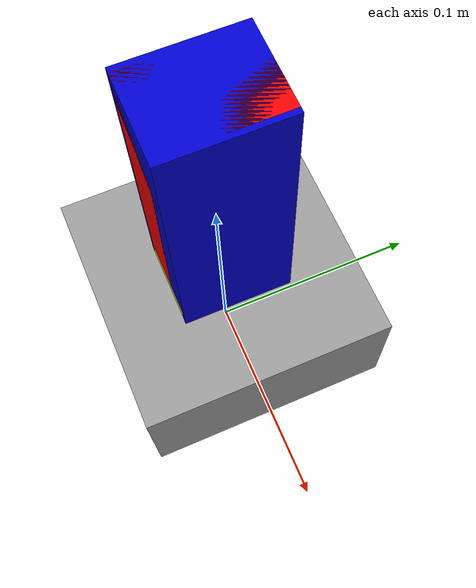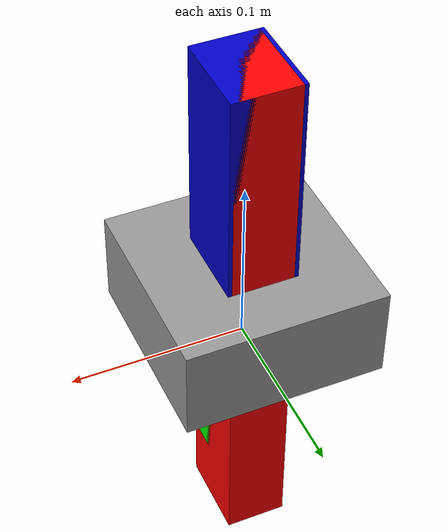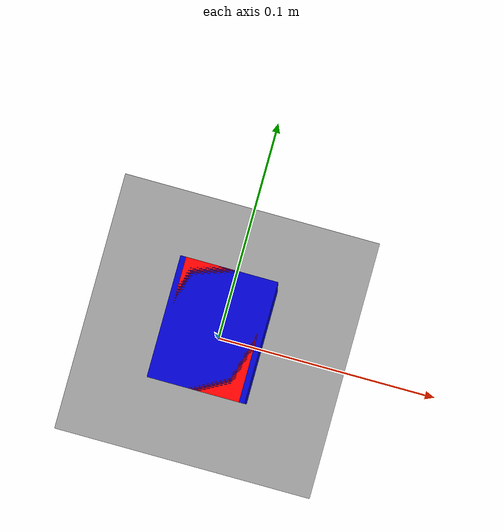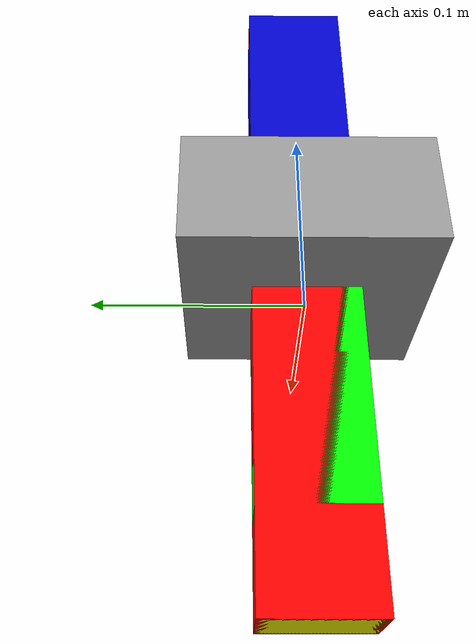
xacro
<?xml version="1.0"?>
<robot name="omnipointer"  xmlns:xacro="http://ros.org/wiki/xacro">
  <xacro:include filename="$(find omni_description)/urdf/common.xacro" />
  <!-- omnipointer arm -->
  <xacro:include filename="$(find omni_description)/urdf/omnipointer_arm/arm.urdf.xacro" />
  <!-- materials for visualization -->
  <xacro:include filename="$(find omni_description)/urdf/materials.urdf.xacro" />

    <!-- Now we can start using the macros xacro:included above to define the actual omnipointer -->

  <!-- foot for arm-->
  <link name="base_link">
    <inertial>
       <origin xyz="0 0 0" rpy="0 0 0"/>
       <mass value="10.0"/>
       <inertia ixx="0.1"  ixy="0"  ixz="0" iyy="0.1" iyz="0" izz="0.1" />
    </inertial>
  </link>

  <xacro:omnipointer_arm name="arm" parent="base_link">
    <origin xyz="0 0 0" rpy="0 0 0" />
  </xacro:omnipointer_arm>
</robot>

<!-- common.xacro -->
<robot xmlns:xacro="http://ros.org/wiki/xacro">
    <xacro:property name="M_PI" value="3.1415926535897931" />

    <xacro:macro name="box_link" params="name width depth length mass color">
        <link name="${name}">
            <visual>
                <origin xyz="0 0 ${length/2.0}" rpy="0 0 0"/>
                <geometry>
                  <box size="${width} ${depth} ${length}"/>
                </geometry>
                <material name="${color}"/>
            </visual>
            <collision>
                <origin xyz="0 0 ${length/2.0}" rpy="0 0 0"/>
                <geometry>
                    <box size="${width} ${depth} ${length}"/>
                </geometry>
            </collision>
            <inertial>
                <!-- CENTER OF MASS -->
                <origin xyz="0 0 ${length/2.0}" rpy="0 0 0"/>
                <mass value="${mass}"/>
                <!-- box inertia: 1/12*m(y^2+z^2), ... -->
                <inertia ixx="${1/12*mass*(depth*depth+length*length)}" ixy="0" ixz="0" iyy="${1/12*mass*(width*width+length*length)}" iyz="0" izz="${1/12*mass*(width*width+depth*depth)}"/>
              </inertial>
          </link>
    </xacro:macro>

    <xacro:macro name="box_vci" params="name mass size_x size_y size_z xyz color">
        <!-- For Box Visual Collision Intertial -->
        <visual>
            <origin xyz="${xyz}" rpy="0 0 0"/>
            <geometry name="${name}">
              <box size="${size_x} ${size_y} ${size_z}"/>
            </geometry>
            <material name="${color}"/>
        </visual>
        <collision>
            <origin xyz="${xyz}" rpy="0 0 0"/>
            <geometry>
                <box size="${size_x} ${size_y} ${size_z}"/>
            </geometry>
        </collision>
        <inertial>
            <!-- center of mass -->
            <origin xyz="${xyz}" rpy="0 0 0"/>
            <mass value="${mass}"/>
            <!-- box inertia: 1/12*m(y^2+z^2), ... -->
            <inertia ixx="${1/12*mass*(size_y**2 + size_z**2)}" ixy="0" ixz="0"
                iyy="${1/12*mass*(size_x**2 + size_z**2)}" iyz="0"
                izz="${1/12*mass*(size_x**2 + size_y**2)}"/>
          </inertial>
    </xacro:macro>

    <xacro:macro name="box_ci" params="name mass size_x size_y size_z
        xyz color">
        <!-- For Box Collision Intertial -->
        <collision>
            <origin xyz="${xyz}" rpy="0 0 0"/>
            <geometry>
                <box size="${size_x} ${size_y} ${size_z}"/>
            </geometry>
        </collision>
        <inertial>
            <!-- center of mass -->
            <origin xyz="${xyz}" rpy="0 0 0"/>
            <mass value="${mass}"/>
            <!-- box inertia: 1/12*m(y^2+z^2), ... -->
            <inertia ixx="${1/12*mass*(size_y**2 + size_z**2)}" ixy="0" ixz="0"
                iyy="${1/12*mass*(size_x**2 + size_z**2)}" iyz="0"
                izz="${1/12*mass*(size_x**2 + size_y**2)}"/>
          </inertial>
    </xacro:macro>
</robot>

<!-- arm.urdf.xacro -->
<robot xmlns:xacro="http://ros.org/wiki/xacro">
  <!-- INCLUDE LINKS/JOINTS PROPERTIES -->
  <xacro:include filename="$(find omni_description)/urdf/omnipointer_arm/properties.urdf.xacro" />

  <!-- XACRO MACRO FOR ARM LINKS/JOINTS -->
  <xacro:macro name="omnipointer_arm" params="parent name *origin">

    <!-- joint between base_link and arm_0_link -->
    <joint name="${name}_joint_0" type="fixed" >
      <xacro:insert_block name="origin" />
      <parent link="${parent}" />
      <child link="${name}_link_0" />
    </joint>

    <xacro:box_link name="${name}_link_0" width="${link_0_width}" depth="${link_0_depth}" length="${link_0_length}" mass="${link_0_mass}" color="omni/LightGrey"/>

    <joint name="${name}_joint_1" type="revolute">
      <parent link="${name}_link_0"/>
      <child link="${name}_link_1"/>
      <limit effort="${joint_eff}" lower="0" upper="${joint_lim_base}" velocity="${joint_vel}"/>
      <origin xyz="0 0 ${link_0_length}" rpy="0 0 ${M_PI}"/>
      <axis xyz="0 0 1"/>
    </joint>

    <xacro:box_link name="${name}_link_1" width="${link_1_width}" depth="${link_1_depth}" length="${link_1_length}" mass="${link_1_mass}" color="omni/Blue"/>

    <joint name="${name}_joint_2" type="revolute">
      <parent link="${name}_link_1"/>
      <child link="${name}_link_2"/>
      <limit effort="${joint_eff}" lower="0" upper="${joint_lim}" velocity="${joint_vel}"/>
      <origin xyz="0 0 ${link_1_length}" rpy="${M_PI} 0 0"/>
      <axis xyz="0 1 0"/>
    </joint>

    <xacro:box_link name="${name}_link_2" width="${link_2_width}" depth="${link_2_depth}" length="${link_2_length}" mass="${link_2_mass}" color="omni/Red"/>

    <joint name="${name}_joint_3" type="revolute">
      <parent link="${name}_link_2"/>
      <child link="${name}_link_3"/>
      <limit effort="${joint_eff}" lower="0" upper="${joint_lim}" velocity="${joint_vel}"/>
      <origin xyz="0 0 ${link_2_length}" rpy="0 ${M_PI} 0"/>
      <axis xyz="0 1 0"/>
    </joint>

    <xacro:box_link name="${name}_link_3" width="${link_3_width}" depth="${link_3_depth}" length="${link_3_length}" mass="${link_3_mass}" color="omni/Yellow"/>

    <joint name="${name}_joint_4" type="revolute">
      <parent link="${name}_link_3"/>
      <child link="${name}_link_4"/>
      <limit effort="${joint_eff}" lower="0" upper="${joint_lim}" velocity="${joint_vel}"/>
      <origin xyz="0 0 ${link_3_length}" rpy="0 ${M_PI} 0"/>
      <axis xyz="0 1 0"/>
    </joint>

    <xacro:box_link name="${name}_link_4" width="${link_4_width}" depth="${link_4_depth}" length="${link_4_length}" mass="${link_4_mass}" color="omni/Green"/>

    <joint name="${name}_joint_5" type="fixed">
      <parent link="${name}_link_4"/>
      <child link="${name}_link_5"/>
      <origin xyz="0 0 ${link_4_length}" rpy="0 0 0"/>
    </joint>

    <link name="${name}_link_5"/>
    <!-- END OF ARM LINKS/JOINTS -->
  </xacro:macro>
</robot>

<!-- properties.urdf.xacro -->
<robot xmlns:xacro="http://ros.org/wiki/xacro">
    <!-- XACRO PROPERTIES -->
    <xacro:property name="link_0_width" value="0.1143"/>
    <xacro:property name="link_0_depth" value="0.1143"/>
    <xacro:property name="link_0_length" value="0.0545"/>
    <xacro:property name="link_0_mass" value="0.20"/>         <!--MX64trntbl + MX106:  ? + 0.153 -->

    <xacro:property name="link_1_width" value="0.0402"/>
    <xacro:property name="link_1_depth" value="0.05"/>
    <xacro:property name="link_1_length" value="0.123"/>
    <xacro:property name="link_1_mass" value="0.190421352"/> <!-- singleaxismount + 2.5girder + singleaxismount + base + MX106: 0.007370876 + 0.0226796 + 0.007370876 + ? + 0.153 -->

    <xacro:property name="link_2_width" value="0.0356"/>
    <xacro:property name="link_2_depth" value="0.05"/>
    <xacro:property name="link_2_length" value="0.317"/>
    <xacro:property name="link_2_mass" value="0.29302326"/> <!-- frame106 + singleaxismount + adjustgirder + singleaxismount + base + MX28: 0.0907185 + 0.00737088 + 0.110563 + 0.00737088 + ? + 0.077 -->

    <xacro:property name="link_3_width" value="0.0356"/>
    <xacro:property name="link_3_depth" value="0.05"/>
    <xacro:property name="link_3_length" value="0.202"/>
    <xacro:property name="link_3_mass" value="0.21931466"/> <!-- frame28 + singleaxismount + 5girder + singleaxismount + base + MX28: 0.0907185 + 0.00737088 + 0.0368544 + 0.00737088 + ? + 0.077 -->

    <xacro:property name="link_4_width" value="0.0356"/>
    <xacro:property name="link_4_depth" value="0.05"/>
    <xacro:property name="link_4_length" value="0.1605"/>
    <xacro:property name="link_4_mass" value="0.15813986"/> <!-- frame28 + singleaxismount + 2.5girder + singleaxismount + tip: 0.0907185 + 0.00737088 + 0.0226796 + 0.00737088 + ? -->

    <xacro:property name="joint_lim_base" value="6.283185307"/>
    <xacro:property name="joint_lim" value="6.283185307"/>
    <xacro:property name="joint_eff" value="30.0"/>
    <xacro:property name="joint_vel" value="10.0"/>
</robot>

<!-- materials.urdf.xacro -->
<robot>
  <material name="omni/Blue">
    <color rgba="0 0 0.8 1"/>
  </material>

  <material name="omni/Red">
    <color rgba="1 0 0 1"/>
  </material>

  <material name="omni/Green">
    <color rgba="0 1 0 1"/>
  </material>

  <material name="omni/Yellow">
    <color rgba="1 1 0 1"/>
  </material>

  <material name="omni/LightGrey">
    <color rgba="0.6 0.6 0.6 1"/>
  </material>

  <material name="omni/DarkGrey">
    <color rgba="0.4 0.4 0.4 1"/>
  </material>
</robot>
